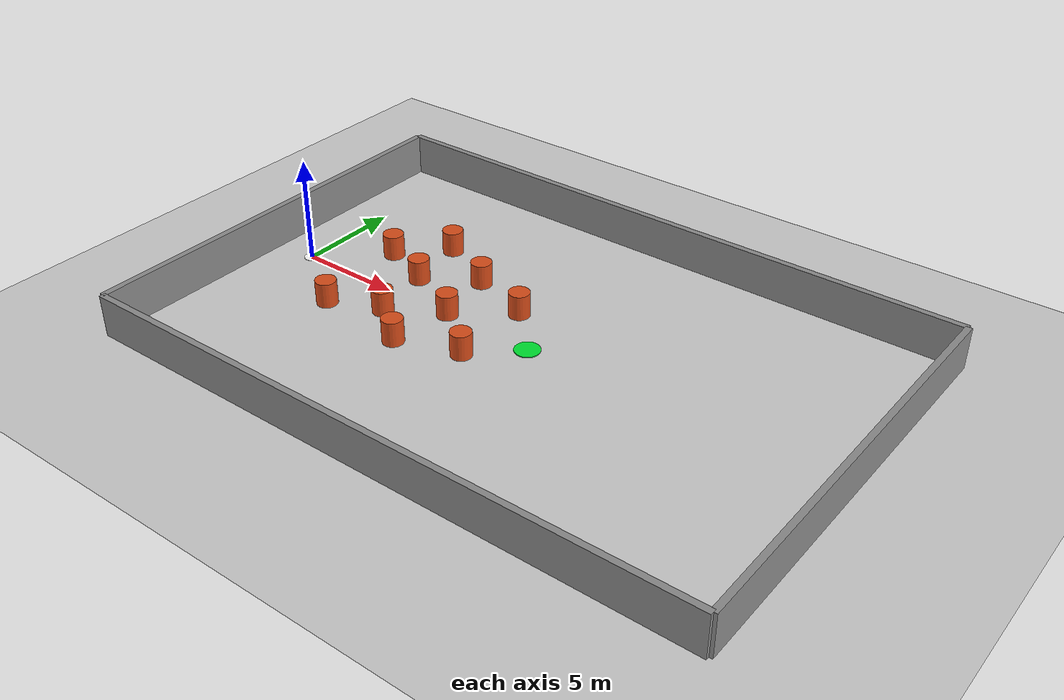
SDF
<?xml version="1.0"?>
<sdf version="1.9">
  <world name="obstacle_course">

    <!-- ── Physics ── -->
    <physics name="1ms" type="ignored">
      <max_step_size>0.001</max_step_size>
      <real_time_factor>1.0</real_time_factor>
    </physics>

    <!-- ── Required system plugins ── -->
    <plugin filename="gz-sim-physics-system"
            name="gz::sim::systems::Physics"/>
    <plugin filename="gz-sim-user-commands-system"
            name="gz::sim::systems::UserCommands"/>
    <plugin filename="gz-sim-scene-broadcaster-system"
            name="gz::sim::systems::SceneBroadcaster"/>
    <!-- Sensors plugin required for LiDAR -->
    <plugin filename="gz-sim-sensors-system"
            name="gz::sim::systems::Sensors">
      <render_engine>ogre2</render_engine>
    </plugin>

    <!-- ── Lighting ── -->
    <light type="directional" name="sun">
      <cast_shadows>true</cast_shadows>
      <pose>0 0 15 0 0 0</pose>
      <diffuse>0.9 0.9 0.9 1</diffuse>
      <specular>0.3 0.3 0.3 1</specular>
      <direction>-0.5 0.1 -0.9</direction>
      <attenuation>
        <range>1000</range><constant>0.9</constant>
        <linear>0.01</linear><quadratic>0.001</quadratic>
      </attenuation>
    </light>

    <!-- ── Ground plane ── -->
    <model name="ground_plane">
      <static>true</static>
      <link name="link">
        <collision name="collision">
          <geometry>
            <plane><normal>0 0 1</normal><size>60 40</size></plane>
          </geometry>
          <surface>
            <friction><ode><mu>100</mu><mu2>50</mu2></ode></friction>
          </surface>
        </collision>
        <visual name="visual">
          <geometry>
            <plane><normal>0 0 1</normal><size>60 40</size></plane>
          </geometry>
          <material>
            <ambient>0.8 0.8 0.8 1</ambient>
            <diffuse>0.8 0.8 0.8 1</diffuse>
          </material>
        </visual>
      </link>
    </model>

    <model name="wall_west">
      <static>true</static><pose>-2.15 0 1.0 0 0 0</pose>
      <link name="link">
        <collision name="col"><geometry><box><size>0.3 20.3 2.0</size></box></geometry></collision>
        <visual name="vis">
          <geometry><box><size>0.3 20.3 2.0</size></box></geometry>
          <material><ambient>0.55 0.55 0.55 1</ambient><diffuse>0.55 0.55 0.55 1</diffuse></material>
        </visual>
      </link>
    </model>

    <model name="wall_east">
      <static>true</static><pose>28.15 0 1.0 0 0 0</pose>
      <link name="link">
        <collision name="col"><geometry><box><size>0.3 20.3 2.0</size></box></geometry></collision>
        <visual name="vis">
          <geometry><box><size>0.3 20.3 2.0</size></box></geometry>
          <material><ambient>0.55 0.55 0.55 1</ambient><diffuse>0.55 0.55 0.55 1</diffuse></material>
        </visual>
      </link>
    </model>

    <model name="wall_south">
      <static>true</static><pose>13.0 -10.15 1.0 0 0 0</pose>
      <link name="link">
        <collision name="col"><geometry><box><size>30.3 0.3 2.0</size></box></geometry></collision>
        <visual name="vis">
          <geometry><box><size>30.3 0.3 2.0</size></box></geometry>
          <material><ambient>0.55 0.55 0.55 1</ambient><diffuse>0.55 0.55 0.55 1</diffuse></material>
        </visual>
      </link>
    </model>

    <model name="wall_north">
      <static>true</static><pose>13.0 10.15 1.0 0 0 0</pose>
      <link name="link">
        <collision name="col"><geometry><box><size>30.3 0.3 2.0</size></box></geometry></collision>
        <visual name="vis">
          <geometry><box><size>30.3 0.3 2.0</size></box></geometry>
          <material><ambient>0.55 0.55 0.55 1</ambient><diffuse>0.55 0.55 0.55 1</diffuse></material>
        </visual>
      </link>
    </model>

    <!-- Row 1 — centred in path, staggered north/south -->
    <model name="obs_1">
      <static>true</static><pose>3.0  2.5 0.6 0 0 0</pose>
      <link name="link">
        <collision name="col"><geometry><cylinder><radius>0.5</radius><length>1.2</length></cylinder></geometry></collision>
        <visual name="vis">
          <geometry><cylinder><radius>0.5</radius><length>1.2</length></cylinder></geometry>
          <material><ambient>0.85 0.3 0.1 1</ambient><diffuse>0.85 0.3 0.1 1</diffuse></material>
        </visual>
      </link>
    </model>

    <model name="obs_2">
      <static>true</static><pose>3.5 -2.5 0.6 0 0 0</pose>
      <link name="link">
        <collision name="col"><geometry><cylinder><radius>0.5</radius><length>1.2</length></cylinder></geometry></collision>
        <visual name="vis">
          <geometry><cylinder><radius>0.5</radius><length>1.2</length></cylinder></geometry>
          <material><ambient>0.85 0.3 0.1 1</ambient><diffuse>0.85 0.3 0.1 1</diffuse></material>
        </visual>
      </link>
    </model>

    <!-- Row 2 — blocking direct route -->
    <model name="obs_3">
      <static>true</static><pose>5.5  1.5 0.6 0 0 0</pose>
      <link name="link">
        <collision name="col"><geometry><cylinder><radius>0.5</radius><length>1.2</length></cylinder></geometry></collision>
        <visual name="vis">
          <geometry><cylinder><radius>0.5</radius><length>1.2</length></cylinder></geometry>
          <material><ambient>0.85 0.3 0.1 1</ambient><diffuse>0.85 0.3 0.1 1</diffuse></material>
        </visual>
      </link>
    </model>

    <model name="obs_4">
      <static>true</static><pose>6.0 -1.5 0.6 0 0 0</pose>
      <link name="link">
        <collision name="col"><geometry><cylinder><radius>0.5</radius><length>1.2</length></cylinder></geometry></collision>
        <visual name="vis">
          <geometry><cylinder><radius>0.5</radius><length>1.2</length></cylinder></geometry>
          <material><ambient>0.85 0.3 0.1 1</ambient><diffuse>0.85 0.3 0.1 1</diffuse></material>
        </visual>
      </link>
    </model>

    <!-- Row 3 — tighter cluster -->
    <model name="obs_5">
      <static>true</static><pose>8.0  3.0 0.6 0 0 0</pose>
      <link name="link">
        <collision name="col"><geometry><cylinder><radius>0.5</radius><length>1.2</length></cylinder></geometry></collision>
        <visual name="vis">
          <geometry><cylinder><radius>0.5</radius><length>1.2</length></cylinder></geometry>
          <material><ambient>0.85 0.3 0.1 1</ambient><diffuse>0.85 0.3 0.1 1</diffuse></material>
        </visual>
      </link>
    </model>

    <model name="obs_6">
      <static>true</static><pose>8.5  0.0 0.6 0 0 0</pose>
      <link name="link">
        <collision name="col"><geometry><cylinder><radius>0.5</radius><length>1.2</length></cylinder></geometry></collision>
        <visual name="vis">
          <geometry><cylinder><radius>0.5</radius><length>1.2</length></cylinder></geometry>
          <material><ambient>0.85 0.3 0.1 1</ambient><diffuse>0.85 0.3 0.1 1</diffuse></material>
        </visual>
      </link>
    </model>

    <model name="obs_7">
      <static>true</static><pose>8.0 -3.0 0.6 0 0 0</pose>
      <link name="link">
        <collision name="col"><geometry><cylinder><radius>0.5</radius><length>1.2</length></cylinder></geometry></collision>
        <visual name="vis">
          <geometry><cylinder><radius>0.5</radius><length>1.2</length></cylinder></geometry>
          <material><ambient>0.85 0.3 0.1 1</ambient><diffuse>0.85 0.3 0.1 1</diffuse></material>
        </visual>
      </link>
    </model>

    <!-- Row 4 — near goal -->
    <model name="obs_8">
      <static>true</static><pose>11.0  2.0 0.6 0 0 0</pose>
      <link name="link">
        <collision name="col"><geometry><cylinder><radius>0.5</radius><length>1.2</length></cylinder></geometry></collision>
        <visual name="vis">
          <geometry><cylinder><radius>0.5</radius><length>1.2</length></cylinder></geometry>
          <material><ambient>0.85 0.3 0.1 1</ambient><diffuse>0.85 0.3 0.1 1</diffuse></material>
        </visual>
      </link>
    </model>

    <model name="obs_9">
      <static>true</static><pose>11.0 -2.0 0.6 0 0 0</pose>
      <link name="link">
        <collision name="col"><geometry><cylinder><radius>0.5</radius><length>1.2</length></cylinder></geometry></collision>
        <visual name="vis">
          <geometry><cylinder><radius>0.5</radius><length>1.2</length></cylinder></geometry>
          <material><ambient>0.85 0.3 0.1 1</ambient><diffuse>0.85 0.3 0.1 1</diffuse></material>
        </visual>
      </link>
    </model>

    <model name="obs_10">
      <static>true</static><pose>5.0  4.5 0.6 0 0 0</pose>
      <link name="link">
        <collision name="col"><geometry><cylinder><radius>0.5</radius><length>1.2</length></cylinder></geometry></collision>
        <visual name="vis">
          <geometry><cylinder><radius>0.5</radius><length>1.2</length></cylinder></geometry>
          <material><ambient>0.85 0.3 0.1 1</ambient><diffuse>0.85 0.3 0.1 1</diffuse></material>
        </visual>
      </link>
    </model>

    <!-- ── Goal marker — green disc at (13, 0) ── -->
    <model name="goal_marker">
      <static>true</static><pose>13.0 0.0 0.02 0 0 0</pose>
      <link name="link">
        <visual name="vis">
          <geometry><cylinder><radius>0.6</radius><length>0.04</length></cylinder></geometry>
          <material>
            <ambient>0.0 0.9 0.2 1</ambient>
            <diffuse>0.0 0.9 0.2 1</diffuse>
          </material>
        </visual>
      </link>
    </model>

    <!-- ── Start marker — white disc at (0,0) ── -->
    <model name="start_marker">
      <static>true</static><pose>0.0 0.0 0.01 0 0 0</pose>
      <link name="link">
        <visual name="vis">
          <geometry><cylinder><radius>0.4</radius><length>0.02</length></cylinder></geometry>
          <material>
            <ambient>1.0 1.0 1.0 1</ambient>
            <diffuse>1.0 1.0 1.0 1</diffuse>
          </material>
        </visual>
      </link>
    </model>

  </world>
</sdf>
